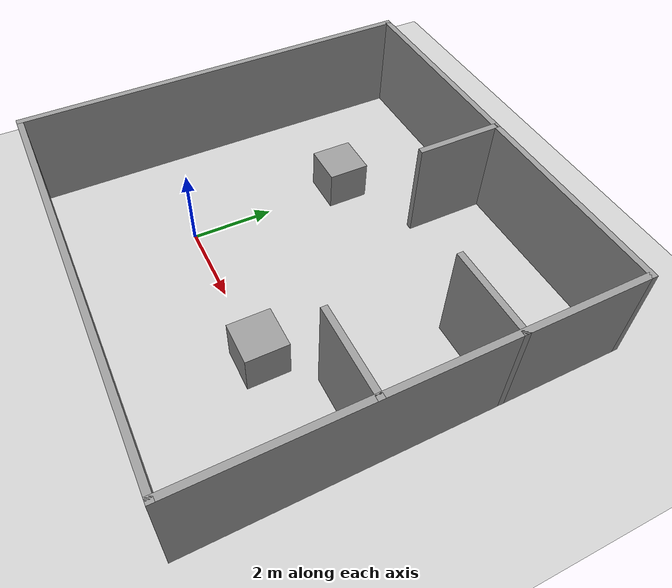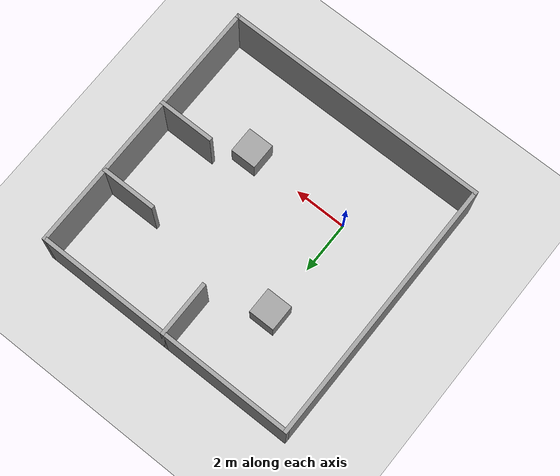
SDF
<sdf version="1.7">
 <world name="default">
  <light name="sun" type="directional">
   <pose>0 0 10 0 -0 0</pose>
   <diffuse>0.8 0.8 0.8 1</diffuse>
   <specular>0.2 0.2 0.2 1</specular>
   <attenuation>
    <range>1000</range>
    <constant>0.9</constant>
    <linear>0.01</linear>
    <quadratic>0.001</quadratic>
   </attenuation>
   <direction>-0.5 0.1 -0.9</direction>
   <spot><inner_angle>0</inner_angle><outer_angle>0</outer_angle><falloff>0</falloff></spot>
  </light>
  <model name="ground_plane">
   <pose>0 4 0 0 -0 0</pose>
   <static>1</static>
   <link name="link">
    <collision name="collision">
     <geometry><plane><normal>0 0 1</normal><size>100 100</size></plane></geometry>
     <surface>
      <contact><collide_bitmask>65535</collide_bitmask></contact>
      <friction><ode><mu>100</mu><mu2>50</mu2></ode></friction>
     </surface>
    </collision>
    <visual name="visual">
     <cast_shadows>0</cast_shadows>
     <geometry><plane><normal>0 0 1</normal><size>100 100</size></plane></geometry>
     <material>
      <script><uri>file://media/materials/scripts/gazebo.material</uri><name>Gazebo/Grey</name></script>
     </material>
    </visual>
   </link>
  </model>
  <gravity>0 0 -9.8</gravity>
  <magnetic_field>6e-06 2.3e-05 -4.2e-05</magnetic_field>
  <atmosphere type="adiabatic"/>
  <physics type="ode">
   <max_step_size>0.001</max_step_size>
   <real_time_factor>1</real_time_factor>
   <real_time_update_rate>1000</real_time_update_rate>
  </physics>
  <scene><ambient>0.4 0.4 0.4 1</ambient><background>0.7 0.7 0.7 1</background><shadows>1</shadows></scene>
  <audio><device>default</device></audio>
  <spherical_coordinates>
   <surface_model>EARTH_WGS84</surface_model>
   <latitude_deg>0</latitude_deg>
   <longitude_deg>0</longitude_deg>
   <elevation>0</elevation>
   <heading_deg>0</heading_deg>
  </spherical_coordinates>
  <model name="nishant">
   <pose>2 2 0 0 -0 0</pose>
   <link name="Wall_0">
    <collision name="Wall_0_Collision">
     <geometry><box><size>10.15 0.15 2.5</size></box></geometry>
     <pose>0 0 1.25 0 -0 0</pose>
    </collision>
    <visual name="Wall_0_Visual">
     <pose>0 0 1.25 0 -0 0</pose>
     <geometry><box><size>10.15 0.15 2.5</size></box></geometry>
     <material>
      <script><uri>file://media/materials/scripts/gazebo.material</uri><name>Gazebo/Grey</name></script>
      <ambient>1 1 1 1</ambient>
     </material>
     <meta><layer>0</layer></meta>
    </visual>
    <pose>-0 5 0 0 -0 3.14159</pose>
   </link>
   <link name="Wall_1">
    <collision name="Wall_1_Collision">
     <geometry><box><size>10.15 0.15 2.5</size></box></geometry>
     <pose>0 0 1.25 0 -0 0</pose>
    </collision>
    <visual name="Wall_1_Visual">
     <pose>0 0 1.25 0 -0 0</pose>
     <geometry><box><size>10.15 0.15 2.5</size></box></geometry>
     <material>
      <script><uri>file://media/materials/scripts/gazebo.material</uri><name>Gazebo/Grey</name></script>
      <ambient>1 1 1 1</ambient>
     </material>
     <meta><layer>0</layer></meta>
    </visual>
    <pose>-5 0 0 0 -0 -1.5708</pose>
   </link>
   <link name="Wall_2">
    <collision name="Wall_2_Collision">
     <geometry><box><size>10.15 0.15 2.5</size></box></geometry>
     <pose>0 0 1.25 0 -0 0</pose>
    </collision>
    <visual name="Wall_2_Visual">
     <pose>0 0 1.25 0 -0 0</pose>
     <geometry><box><size>10.15 0.15 2.5</size></box></geometry>
     <material>
      <script><uri>file://media/materials/scripts/gazebo.material</uri><name>Gazebo/Grey</name></script>
      <ambient>1 1 1 1</ambient>
     </material>
     <meta><layer>0</layer></meta>
    </visual>
    <pose>-0 -5 0 0 -0 0</pose>
   </link>
   <link name="Wall_3">
    <collision name="Wall_3_Collision">
     <geometry><box><size>10.15 0.15 2.5</size></box></geometry>
     <pose>0 0 1.25 0 -0 0</pose>
    </collision>
    <visual name="Wall_3_Visual">
     <pose>0 0 1.25 0 -0 0</pose>
     <geometry><box><size>10.15 0.15 2.5</size></box></geometry>
     <material>
      <script><uri>file://media/materials/scripts/gazebo.material</uri><name>Gazebo/Grey</name></script>
      <ambient>1 1 1 1</ambient>
     </material>
     <meta><layer>0</layer></meta>
    </visual>
    <pose>5 0 0 0 -0 1.5708</pose>
   </link>
   <link name="Wall_5">
    <collision name="Wall_5_Collision">
     <geometry><box><size>2.15 0.15 2.5</size></box></geometry>
     <pose>0 0 1.25 0 -0 0</pose>
    </collision>
    <visual name="Wall_5_Visual">
     <pose>0 0 1.25 0 -0 0</pose>
     <geometry><box><size>2.15 0.15 2.5</size></box></geometry>
     <material>
      <script><uri>file://media/materials/scripts/gazebo.material</uri><name>Gazebo/Grey</name></script>
      <ambient>1 1 1 1</ambient>
     </material>
     <meta><layer>0</layer></meta>
    </visual>
    <pose>4 -1 0 0 -0 3.14159</pose>
   </link>
   <link name="Wall_7">
    <collision name="Wall_7_Collision">
     <geometry><box><size>2.15 0.15 2.5</size></box></geometry>
     <pose>0 0 1.25 0 -0 0</pose>
    </collision>
    <visual name="Wall_7_Visual">
     <pose>0 0 1.25 0 -0 0</pose>
     <geometry><box><size>2.15 0.15 2.5</size></box></geometry>
     <material>
      <script><uri>file://media/materials/scripts/gazebo.material</uri><name>Gazebo/Grey</name></script>
      <ambient>1 1 1 1</ambient>
     </material>
     <meta><layer>0</layer></meta>
    </visual>
    <pose>4 2 0 0 -0 0</pose>
   </link>
   <link name="Wall_9">
    <collision name="Wall_9_Collision">
     <geometry><box><size>2.15 0.15 2.5</size></box></geometry>
     <pose>0 0 1.25 0 -0 0</pose>
    </collision>
    <visual name="Wall_9_Visual">
     <pose>0 0 1.25 0 -0 0</pose>
     <geometry><box><size>2.15 0.15 2.5</size></box></geometry>
     <material>
      <script><uri>file://media/materials/scripts/gazebo.material</uri><name>Gazebo/Grey</name></script>
      <ambient>1 1 1 1</ambient>
     </material>
     <meta><layer>0</layer></meta>
    </visual>
    <pose>-0 4 0 0 -0 -1.5708</pose>
   </link>
   <static>1</static>
  </model>
  <model name="unit_box">
   <pose>4 0 0.499995 0 1e-05 0</pose>
   <link name="link">
    <inertial>
     <mass>1</mass>
     <inertia>
      <ixx>0.166667</ixx>
      <ixy>0</ixy>
      <ixz>0</ixz>
      <iyy>0.166667</iyy>
      <iyz>0</iyz>
      <izz>0.166667</izz>
     </inertia>
    </inertial>
    <collision name="collision"><geometry><box><size>1 1 1</size></box></geometry></collision>
    <visual name="visual">
     <geometry><box><size>1 1 1</size></box></geometry>
     <material>
      <script><name>Gazebo/Grey</name><uri>file://media/materials/scripts/gazebo.material</uri></script>
     </material>
    </visual>
   </link>
  </model>
  <model name="unit_box_0">
   <pose>-5e-06 4 0.499995 0 -1e-05 0</pose>
   <link name="link">
    <inertial>
     <mass>1</mass>
     <inertia>
      <ixx>0.166667</ixx>
      <ixy>0</ixy>
      <ixz>0</ixz>
      <iyy>0.166667</iyy>
      <iyz>0</iyz>
      <izz>0.166667</izz>
     </inertia>
    </inertial>
    <collision name="collision"><geometry><box><size>1 1 1</size></box></geometry></collision>
    <visual name="visual">
     <geometry><box><size>1 1 1</size></box></geometry>
     <material>
      <script><name>Gazebo/Grey</name><uri>file://media/materials/scripts/gazebo.material</uri></script>
     </material>
    </visual>
   </link>
  </model>
 </world>
</sdf>
